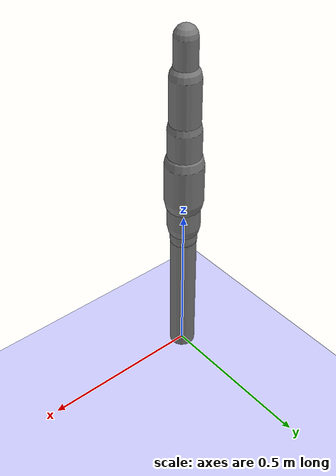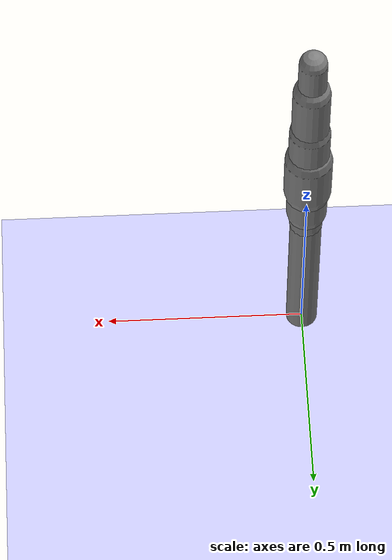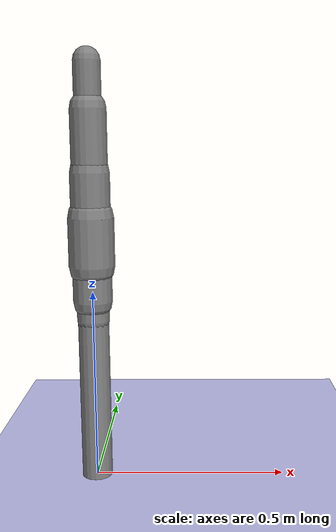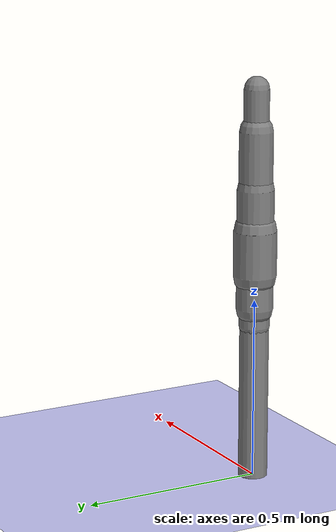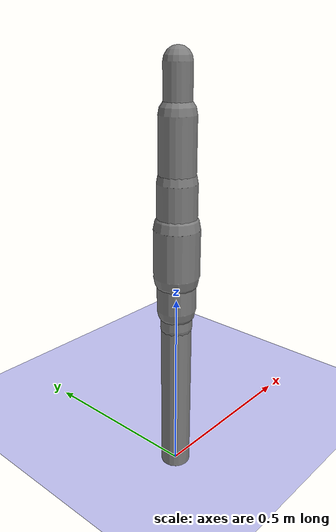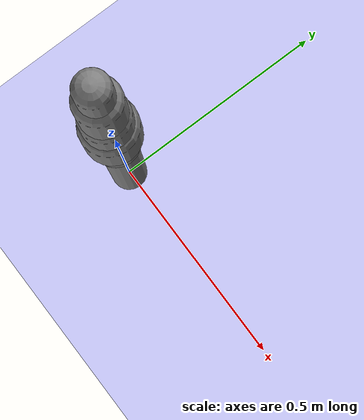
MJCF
<?xml version='1.0' encoding='UTF-8'?>
<mujoco model="robot_model">
  <worldbody>
    <light name="light" pos="0 -3 10" dir="0 0.5 -1" diffuse=".8 .8 .8" specular="0.1 0.1 0.1"/>
    <geom name="floor" type="plane" size="10.0 10.0 0.1" pos="0 0 0" rgba="0.8 0.8 1 1" contype="2" conaffinity="1"/>
    <body name="limb0" pos="0 0 0">
      <geom type="capsule" fromto="0 0 0 0 0 0.6" size="0.04" density="1105.3217759567171" contype="1" conaffinity="2"/>
      <site type="sphere" size="0.01" name="limb0_site0" pos="0 0 0.3461445858697572"/>
      <site type="sphere" size="0.01" name="limb0_site1" pos="0 0 0.5650236933179318"/>
      <freejoint name="limb0_root"/>
      <body name="limb1" pos="0 0 0.3461445858697572">
        <geom type="capsule" fromto="0 0 0 0 0 0.2108483557747831" size="0.03176305440673138" density="688.7771406626807" contype="1" conaffinity="2"/>
        <site type="sphere" size="0.01" name="limb1_site0" pos="0 0 0.1315488757351795"/>
        <site type="sphere" size="0.01" name="limb1_site1" pos="0 0 0.0807207647042045"/>
        <site type="sphere" size="0.01" name="limb1_site2" pos="0 0 0.20255461164896735"/>
        <body name="limb2" pos="0 0 0.1315488757351795">
          <geom type="capsule" fromto="0 0 0 0 0 0.328612757384137" size="0.05065179609246566" density="732.5468624136837" contype="1" conaffinity="2"/>
          <site type="sphere" size="0.01" name="limb2_site0" pos="0 0 0.09185069936347319"/>
          <body name="limb3" pos="0 0 0.09185069936347319">
            <geom type="capsule" fromto="0 0 0 0 0 0.12401650302494929" size="0.059091242648762504" density="1134.3248843751726" contype="1" conaffinity="2"/>
            <joint name="joint_limb2_limb3_0" type="hinge" axis="1 0 0" range="-27.78871010990333 27.78871010990333" damping="5.0"/>
          </body>
          <joint name="joint_limb1_limb2_0" type="hinge" axis="0 1 0" range="-79.19027832141104 79.19027832141104" damping="5.0"/>
        </body>
        <body name="limb4" pos="0 0 0.0807207647042045">
          <geom type="capsule" fromto="0 0 0 0 0 0.3449366956007403" size="0.04182995516077146" density="888.638751137447" contype="1" conaffinity="2"/>
          <joint name="joint_limb1_limb4_0" type="hinge" axis="1 0 0" range="-76.57739072162552 76.57739072162552" damping="5.0"/>
        </body>
        <body name="limb5" pos="0 0 0.20255461164896735">
          <geom type="capsule" fromto="0 0 0 0 0 0.4886525017141072" size="0.02730849030649112" density="1118.1587480940386" contype="1" conaffinity="2"/>
          <site type="sphere" size="0.01" name="limb5_site0" pos="0 0 0.2148602362279738"/>
          <site type="sphere" size="0.01" name="limb5_site1" pos="0 0 0.23999393848541756"/>
          <site type="sphere" size="0.01" name="limb5_site2" pos="0 0 0.31757881690587303"/>
          <body name="limb6" pos="0 0 0.2148602362279738">
            <geom type="capsule" fromto="0 0 0 0 0 0.19942307054689806" size="0.04609395862756084" density="1147.4288306062897" contype="1" conaffinity="2"/>
            <joint name="joint_limb5_limb6_0" type="hinge" axis="0 1 0" range="-98.89882698854483 98.89882698854483" damping="5.0"/>
          </body>
          <body name="limb7" pos="0 0 0.23999393848541756">
            <geom type="capsule" fromto="0 0 0 0 0 0.1797215636428" size="0.026091798513952557" density="745.8119714770129" contype="1" conaffinity="2"/>
            <joint name="joint_limb5_limb7_0" type="hinge" axis="1 0 0" range="-43.50354587107485 43.50354587107485" damping="5.0"/>
          </body>
          <body name="limb8" pos="0 0 0.31757881690587303">
            <geom type="capsule" fromto="0 0 0 0 0 0.2102868528065015" size="0.03451406520881031" density="566.487314585425" contype="1" conaffinity="2"/>
            <joint name="joint_limb5_limb8_0" type="hinge" axis="0 1 0" range="-97.4408151263812 97.4408151263812" damping="5.0"/>
          </body>
          <joint name="joint_limb1_limb5_0" type="hinge" axis="0 1 0" range="-87.20994239523657 87.20994239523657" damping="5.0"/>
        </body>
        <joint name="joint_limb0_limb1_0" type="hinge" axis="0 1 0" range="-72.78200781124774 72.78200781124774" damping="5.0"/>
      </body>
      <body name="limb9" pos="0 0 0.5650236933179318">
        <geom type="capsule" fromto="0 0 0 0 0 0.13252947652278277" size="0.05372058858359962" density="1100.1826029615775" contype="1" conaffinity="2"/>
        <site type="sphere" size="0.01" name="limb9_site0" pos="0 0 0.0018206712109859072"/>
        <body name="limb10" pos="0 0 0.0018206712109859072">
          <geom type="capsule" fromto="0 0 0 0 0 0.3297643075211269" size="0.03183707388037653" density="514.4016674114245" contype="1" conaffinity="2"/>
          <joint name="joint_limb9_limb10_0" type="hinge" axis="1 0 0" range="-63.38912243499314 63.38912243499314" damping="5.0"/>
        </body>
        <joint name="joint_limb0_limb9_0" type="hinge" axis="0 1 0" range="-46.186401585393725 46.186401585393725" damping="5.0"/>
      </body>
    </body>
  </worldbody>
  <actuator>
    <position name="position_actuator_joint_limb0_limb1_0" joint="joint_limb0_limb1_0" gear="1.0330237717590445" inheritrange="1" kp="100.0"/>
    <position name="position_actuator_joint_limb1_limb2_0" joint="joint_limb1_limb2_0" gear="1.0104857860709995" inheritrange="1" kp="100.0"/>
    <position name="position_actuator_joint_limb2_limb3_0" joint="joint_limb2_limb3_0" gear="1.436968710822474" inheritrange="1" kp="100.0"/>
    <position name="position_actuator_joint_limb1_limb4_0" joint="joint_limb1_limb4_0" gear="1.9786544527946286" inheritrange="1" kp="100.0"/>
    <position name="position_actuator_joint_limb1_limb5_0" joint="joint_limb1_limb5_0" gear="1.2050840945425614" inheritrange="1" kp="100.0"/>
    <position name="position_actuator_joint_limb5_limb6_0" joint="joint_limb5_limb6_0" gear="1.1120952926298953" inheritrange="1" kp="100.0"/>
    <position name="position_actuator_joint_limb5_limb7_0" joint="joint_limb5_limb7_0" gear="1.5432977976206512" inheritrange="1" kp="100.0"/>
    <position name="position_actuator_joint_limb5_limb8_0" joint="joint_limb5_limb8_0" gear="0.9592737602053503" inheritrange="1" kp="100.0"/>
    <position name="position_actuator_joint_limb0_limb9_0" joint="joint_limb0_limb9_0" gear="0.5181521235082891" inheritrange="1" kp="100.0"/>
    <position name="position_actuator_joint_limb9_limb10_0" joint="joint_limb9_limb10_0" gear="1.6432957577888294" inheritrange="1" kp="100.0"/>
  </actuator>
</mujoco>
